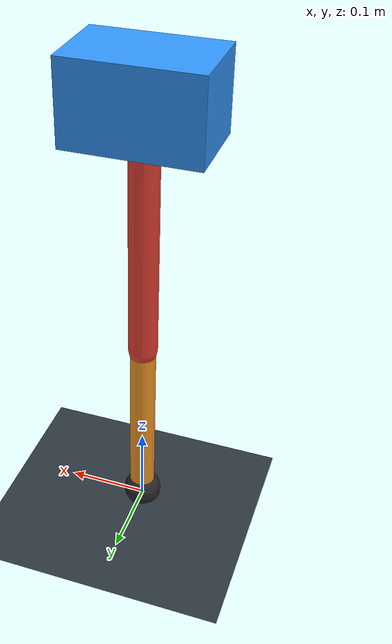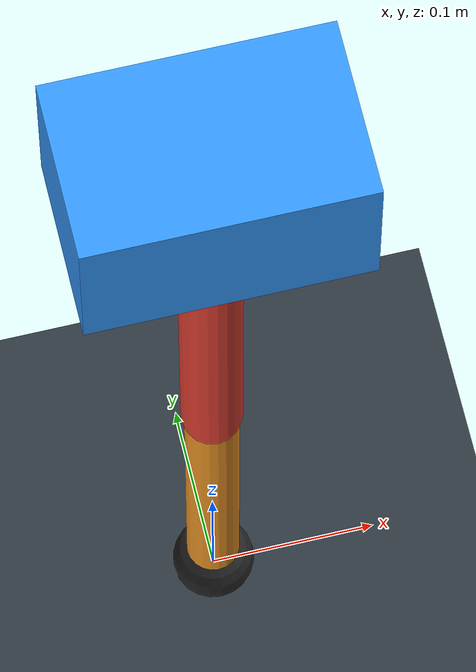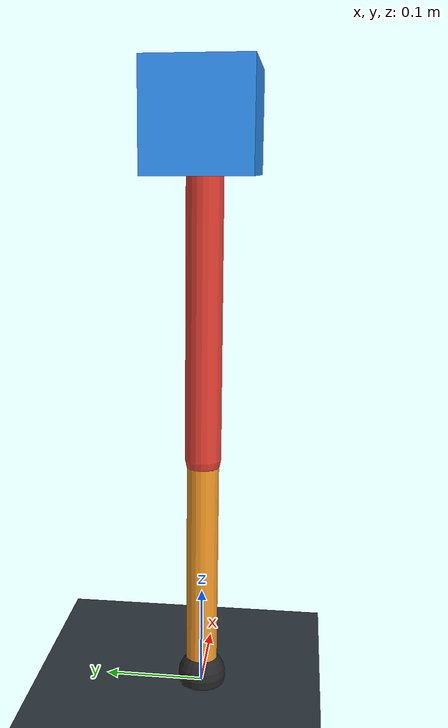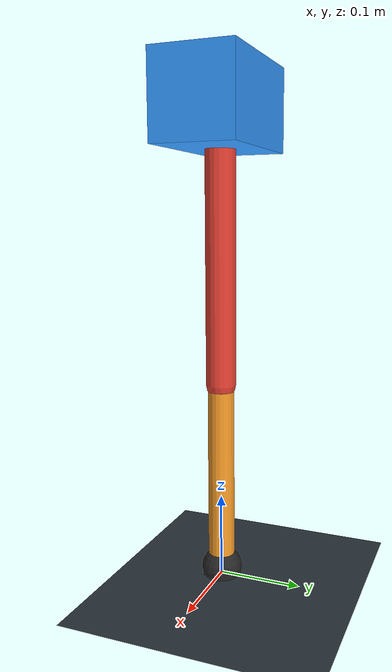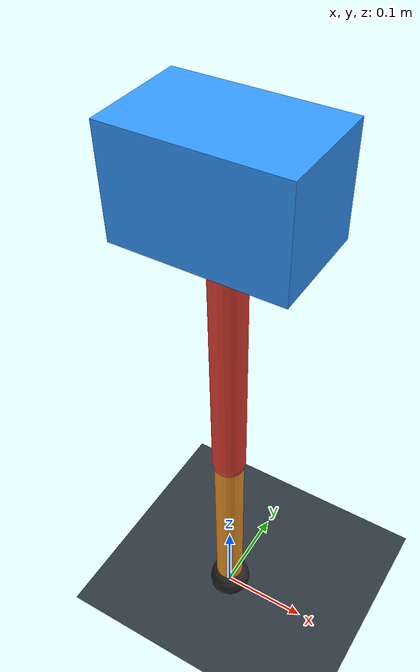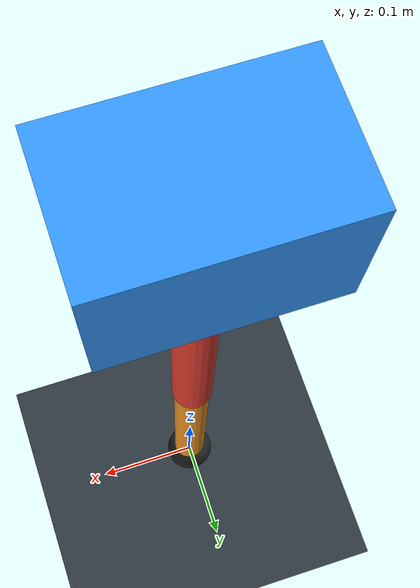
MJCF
<mujoco model="single_axis_two_bar">
  <compiler angle="radian" inertiafromgeom="true"/>
  <option timestep="0.001" integrator="implicitfast" gravity="0 0 -9.81"/>
  <default>
    <joint damping="0.08"/>
    <geom friction="1.2 0.01 0.0001" condim="3"/>
  </default>
  <worldbody>
    <geom name="floor" type="plane" size="5 5 0.1" rgba="0.18 0.22 0.25 1"/>
    <body name="carriage" pos="0 0 0.5674037844826512">
      <joint name="pole_slide" type="slide" axis="0 0 1"/>
      <geom name="payload" type="box" size="0.08 0.05 0.05" mass="3.304422740842695" rgba="0.2 0.6 1 1"/>
      <body name="thigh" pos="0 0 0">
        <joint name="hip" type="hinge" axis="0 1 0"/>
        <geom name="thigh_link" type="capsule" fromto="0 0 0 0 0 -0.32603355627880815" size="0.018" mass="0.2323032170019957" rgba="0.9 0.25 0.2 1"/>
        <body name="shank" pos="0 0 -0.32603355627880815">
          <joint name="knee" type="hinge" axis="0 1 0"/>
          <geom name="shank_link" type="capsule" fromto="0 0 0 0 0 -0.23314560298165704" size="0.016" mass="0.16611932287176476" rgba="0.95 0.6 0.15 1"/>
          <geom name="foot" type="sphere" pos="0 0 -0.23314560298165704" size="0.025" mass="0.03" rgba="0.15 0.15 0.15 1"/>
          <site name="toe" pos="0 0 -0.23314560298165704" size="0.008"/>
        </body>
      </body>
    </body>
  </worldbody>
  <actuator>
    <motor name="hip_motor" joint="hip" ctrlrange="-41.63495113424046 41.63495113424046"/>
    <motor name="knee_motor" joint="knee" ctrlrange="-123.36547650974163 123.36547650974163"/>
  </actuator>
</mujoco>
